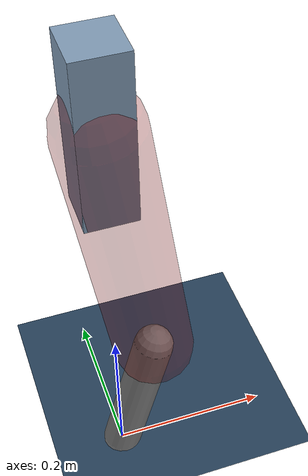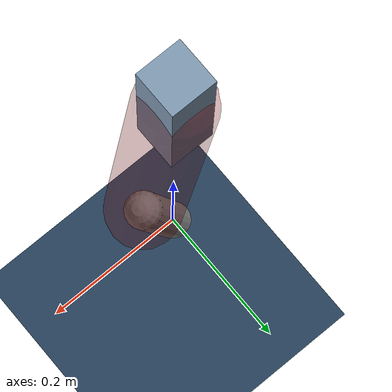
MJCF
<mujoco model="Hopper2D">
	<compiler inertiafromgeom="true" angle="radian" />
	<option timestep="0.001" integrator="implicit" cone="elliptic" solver="Newton" tolerance="1e-10" />

	<default>
		<geom contype="1" conaffinity="1" condim="3" friction="2 0.005 0.0001" solref="0.005 1" />
		<joint limited="true" damping="0.1" />
	</default>

	<asset>
		<texture name="skybox" type="skybox" builtin="gradient" rgb1=".4 .6 .8" rgb2="0 0 0" width="800" height="800" />
		<texture name="grid" type="2d" builtin="checker" rgb1=".1 .2 .3" rgb2=".2 .3 .4" width="300" height="300" mark="edge" markrgb=".2 .3 .4" />
		<material name="ground" texture="grid" texrepeat="1 1" texuniform="true" reflectance="0.1" />
		<material name="leg" rgba="0.5 0.6 0.7 1" />
	</asset>

	<worldbody>

		<geom name="floor" type="plane" size="5 5 0.25" material="ground" />

		<light directional="false" diffuse="0.8 0.8 0.8" specular="0.3 0.3 0.3" pos="0 0 2" dir="0 0 -1" />
		<light mode="targetbodycom" target="base" directional="false" diffuse="0.8 0.8 0.8" specular="0.3 0.3 0.3" pos="0 0 2" dir="0 0 -1" />

		<camera name="fixed" pos="0 -2 1" xyaxes="1 0 0 0 0 1" />
		<camera name="tracking" mode="trackcom" pos="0 -3 1" />

		<body name="root" pos="0 0 0.5271944586519601">
			<joint name="slide_x" type="slide" axis="1 0 0" range="-100 100" />
			<joint name="slide_z" type="slide" axis="0 0 1" range="0 10" />

			<body name="base" pos="0 0 0">
				<geom name="torso" type="box" size="0.03 0.03 0.1" mass="3.003" material="leg" />

				<body name="link1" pos="0 0 0" euler="0 1.4294821387065784 0">
					<joint type="hinge" axis="0 -1 0" pos="0 0 0" name="hinge1" limited="true" range="-3.14 3.14" stiffness="0" damping="0.1" />
					<geom name="thigh" type="capsule" fromto="0 0 0 0.348860939611958 0 0" size="0.05" rgba="0.5 0 0 0.3" mass="1.1235106309134824" />

					<body name="link2" pos="0.348860939611958 0 0" euler="0 0.40526233670737755 0">
						<joint type="hinge" axis="0 -1 0" pos="0 0 0" name="hinge2" limited="true" range="-3.14 3.14" stiffness="0" damping="0.1" />
						<geom name="shank" type="capsule" fromto="0 0 0 0.18833351904000215 0 0" size="0.025" mass="0.39100016713600194" />

					</body>
				</body>
			</body>
		</body>
	</worldbody>

	<actuator>
		<motor name="torque1" joint="hinge1" ctrlrange="-59.46048935838963 59.46048935838963" ctrllimited="true" gear="1" />
		<motor name="torque2" joint="hinge2" ctrlrange="-134.3007001151146 134.3007001151146" ctrllimited="true" gear="1" />
	</actuator>
</mujoco>
